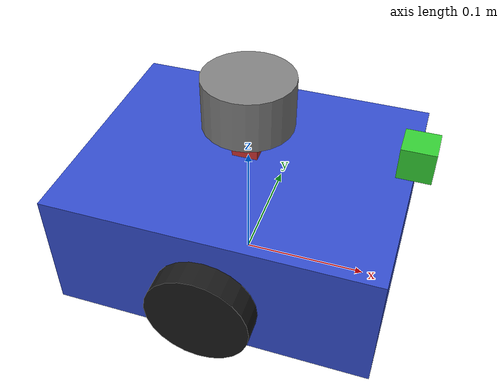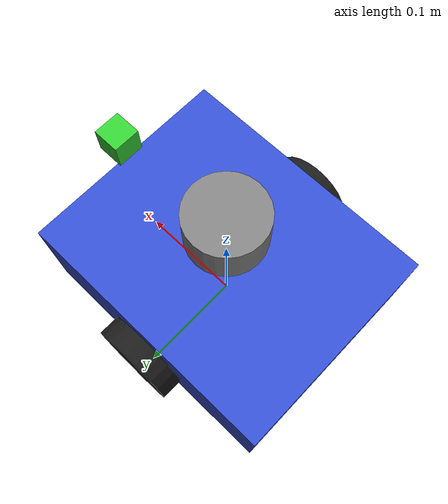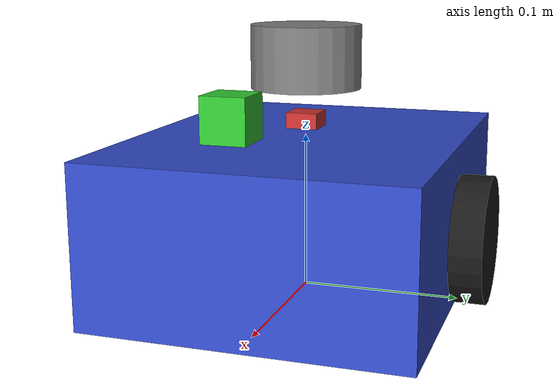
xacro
<?xml version="1.0"?>
<robot name="slam_robot" xmlns:xacro="http://www.ros.org/wiki/xacro">

  <!-- Define properties -->
  <xacro:property name="base_width" value="0.20"/>
  <xacro:property name="base_length" value="0.25"/>
  <xacro:property name="base_height" value="0.10"/>
  <xacro:property name="wheel_radius" value="0.04"/>
  <xacro:property name="wheel_width" value="0.02"/>
  <xacro:property name="wheel_separation" value="0.22"/>

  <!-- Define materials for RViz -->
  <material name="blue">
    <color rgba="0.2 0.3 0.8 1.0"/>
  </material>

  <material name="red">
    <color rgba="0.8 0.2 0.2 1.0"/>
  </material>

  <material name="green">
    <color rgba="0.2 0.8 0.2 1.0"/>
  </material>

  <material name="gray">
    <color rgba="0.5 0.5 0.5 1.0"/>
  </material>

  <material name="black">
    <color rgba="0.1 0.1 0.1 1.0"/>
  </material>

  <!-- Base link (robot main body) -->
  <link name="base_link">
    <visual>
      <geometry>
        <box size="${base_length} ${base_width} ${base_height}"/>
      </geometry>
      <origin xyz="0 0 ${base_height/2}" rpy="0 0 0"/>
      <material name="blue"/>
    </visual>
    <collision>
      <geometry>
        <box size="${base_length} ${base_width} ${base_height}"/>
      </geometry>
      <origin xyz="0 0 ${base_height/2}" rpy="0 0 0"/>
    </collision>
    <inertial>
      <mass value="2.0"/>
      <origin xyz="0 0 ${base_height/2}" rpy="0 0 0"/>
      <inertia ixx="0.0167" ixy="0.0" ixz="0.0" iyy="0.0208" iyz="0.0" izz="0.0292"/>
    </inertial>
  </link>

  <!-- Gazebo material for base_link -->
  <gazebo reference="base_link">
    <material>Gazebo/Blue</material>
  </gazebo>

  <!-- IMU link -->
  <link name="imu_link">
    <visual>
      <geometry>
        <box size="0.02 0.02 0.01"/>
      </geometry>
      <material name="red"/>
    </visual>
    <inertial>
      <mass value="0.01"/>
      <inertia ixx="0.00001" ixy="0.0" ixz="0.0" iyy="0.00001" iyz="0.0" izz="0.00001"/>
    </inertial>
  </link>

  <joint name="base_to_imu" type="fixed">
    <parent link="base_link"/>
    <child link="imu_link"/>
    <origin xyz="0.0 0.0 0.11" rpy="0 0 0"/>
  </joint>

<gazebo reference="imu_link">
    <material>Gazebo/Red</material>
  </gazebo>

  <!-- IMU Sensor Plugin - ADD THIS -->
  <gazebo reference="imu_link">
    <sensor name="imu_sensor" type="imu">
      <always_on>true</always_on>
      <update_rate>100</update_rate>
      <imu>
        <angular_velocity>
          <x>
            <noise type="gaussian">
              <mean>0.0</mean>
              <stddev>0.01</stddev>
            </noise>
          </x>
          <y>
            <noise type="gaussian">
              <mean>0.0</mean>
              <stddev>0.01</stddev>
            </noise>
          </y>
          <z>
            <noise type="gaussian">
              <mean>0.0</mean>
              <stddev>0.01</stddev>
            </noise>
          </z>
        </angular_velocity>
        <linear_acceleration>
          <x>
            <noise type="gaussian">
              <mean>0.0</mean>
              <stddev>0.05</stddev>
            </noise>
          </x>
          <y>
            <noise type="gaussian">
              <mean>0.0</mean>
              <stddev>0.05</stddev>
            </noise>
          </y>
          <z>
            <noise type="gaussian">
              <mean>0.0</mean>
              <stddev>0.05</stddev>
            </noise>
          </z>
        </linear_acceleration>
      </imu>
    </sensor>
  </gazebo>

  <!-- Camera link -->
  <link name="camera_link">
    <visual>
      <geometry>
        <box size="0.025 0.025 0.025"/>
      </geometry>
      <material name="green"/>
    </visual>
    <inertial>
      <mass value="0.01"/>
      <inertia ixx="0.00001" ixy="0.0" ixz="0.0" iyy="0.00001" iyz="0.0" izz="0.00001"/>
    </inertial>
  </link>

  <joint name="base_to_camera" type="fixed">
    <parent link="base_link"/>
    <child link="camera_link"/>
    <origin xyz="0.125 0.0 0.13" rpy="0 0 0"/>
  </joint>

  <gazebo reference="camera_link">
    <material>Gazebo/Green</material>
  </gazebo>

  <!-- Camera Sensor -->
  <gazebo reference="camera_link">
    <sensor name="camera_sensor" type="camera">
      <update_rate>30</update_rate>
      <always_on>1</always_on>
      <visualize>true</visualize>
      <camera>
        <horizontal_fov>1.085</horizontal_fov>
        <image>
          <width>640</width>
          <height>480</height>
          <format>R8G8B8</format>
        </image>
        <clip>
          <near>0.1</near>
          <far>100</far>
        </clip>
        <noise>
          <type>gaussian</type>
          <mean>0.0</mean>
          <stddev>0.007</stddev>
        </noise>
      </camera>
    </sensor>
  </gazebo>

  <!-- LiDAR link -->
  <link name="laser_link">
    <visual>
      <geometry>
        <cylinder radius="0.035" length="0.04"/>
      </geometry>
      <material name="gray"/>
    </visual>
    <collision>
      <geometry>
        <cylinder radius="0.035" length="0.04"/>
      </geometry>
    </collision>
    <inertial>
      <mass value="0.2"/>
      <inertia ixx="0.0001" ixy="0.0" ixz="0.0" iyy="0.0001" iyz="0.0" izz="0.0001"/>
    </inertial>
  </link>

  <joint name="base_to_laser" type="fixed">
    <parent link="base_link"/>
    <child link="laser_link"/>
    <origin xyz="0.0 0.0 0.15" rpy="0 0 0"/>
  </joint>

  <gazebo reference="laser_link">
    <material>Gazebo/Gray</material>
  </gazebo>

  <!-- LiDAR Sensor -->
  <gazebo reference="laser_link">
    <sensor name="lidar_sensor" type="ray">
      <always_on>true</always_on>
      <update_rate>10</update_rate>
      <visualize>true</visualize>
      <ray>
        <scan>
          <horizontal>
            <samples>360</samples>
            <resolution>1</resolution>
            <min_angle>-3.14159</min_angle>
            <max_angle>3.14159</max_angle>
          </horizontal>
        </scan>
        <range>
          <min>0.1</min>
          <max>10.0</max>
          <resolution>0.01</resolution>
        </range>
        <noise>
          <type>gaussian</type>
          <mean>0.0</mean>
          <stddev>0.01</stddev>
        </noise>
      </ray>
    </sensor>
  </gazebo>

  <!-- Left wheel -->
  <link name="left_wheel">
    <visual>
      <geometry>
        <cylinder radius="${wheel_radius}" length="${wheel_width}"/>
      </geometry>
      <origin xyz="0 0 0" rpy="1.5708 0 0"/>
      <material name="black"/>
    </visual>
    <collision>
      <geometry>
        <cylinder radius="${wheel_radius}" length="${wheel_width}"/>
      </geometry>
      <origin xyz="0 0 0" rpy="1.5708 0 0"/>
    </collision>
    <inertial>
      <mass value="0.1"/>
      <origin xyz="0 0 0" rpy="1.5708 0 0"/>
      <inertia ixx="0.0001" ixy="0.0" ixz="0.0" iyy="0.0001" iyz="0.0" izz="0.0001"/>
    </inertial>
  </link>

  <joint name="base_to_left_wheel" type="continuous">
    <parent link="base_link"/>
    <child link="left_wheel"/>
    <origin xyz="0.0 ${wheel_separation/2} ${wheel_radius}" rpy="0 0 0"/>
    <axis xyz="0 1 0"/>
  </joint>

  <gazebo reference="left_wheel">
    <material>Gazebo/Black</material>
  </gazebo>

  <!-- Right wheel -->
  <link name="right_wheel">
    <visual>
      <geometry>
        <cylinder radius="${wheel_radius}" length="${wheel_width}"/>
      </geometry>
      <origin xyz="0 0 0" rpy="1.5708 0 0"/>
      <material name="black"/>
    </visual>
    <collision>
      <geometry>
        <cylinder radius="${wheel_radius}" length="${wheel_width}"/>
      </geometry>
      <origin xyz="0 0 0" rpy="1.5708 0 0"/>
    </collision>
    <inertial>
      <mass value="0.1"/>
      <origin xyz="0 0 0" rpy="1.5708 0 0"/>
      <inertia ixx="0.0001" ixy="0.0" ixz="0.0" iyy="0.0001" iyz="0.0" izz="0.0001"/>
    </inertial>
  </link>

  <joint name="base_to_right_wheel" type="continuous">
    <parent link="base_link"/>
    <child link="right_wheel"/>
    <origin xyz="0.0 ${-wheel_separation/2} ${wheel_radius}" rpy="0 0 0"/>
    <axis xyz="0 1 0"/>
  </joint>

  <gazebo reference="right_wheel">
    <material>Gazebo/Black</material>
  </gazebo>

  <!-- Caster wheel (front) for stability -->
  <link name="caster_wheel">
    <visual>
      <geometry>
        <sphere radius="0.02"/>
      </geometry>
      <material name="black"/>
    </visual>
    <collision>
      <geometry>
        <sphere radius="0.02"/>
      </geometry>
    </collision>
    <inertial>
      <mass value="0.05"/>
      <inertia ixx="0.00001" ixy="0.0" ixz="0.0" iyy="0.00001" iyz="0.0" izz="0.00001"/>
    </inertial>
  </link>

  <joint name="base_to_caster" type="fixed">
    <parent link="base_link"/>
    <child link="caster_wheel"/>
    <origin xyz="0.10 0.0 0.02" rpy="0 0 0"/>
  </joint>

  <gazebo reference="caster_wheel">
    <material>Gazebo/Black</material>
    <mu1>0.0</mu1>  <!-- Frictionless caster -->
    <mu2>0.0</mu2>
  </gazebo>

  <!-- Differential Drive Plugin -->
  <gazebo>
    <plugin filename="libgz-sim-diff-drive-system.so" name="gz::sim::systems::DiffDrive">
      <left_joint>base_to_left_wheel</left_joint>
      <right_joint>base_to_right_wheel</right_joint>
      <wheel_separation>${wheel_separation}</wheel_separation>
      <wheel_radius>${wheel_radius}</wheel_radius>
      <odom_publish_frequency>50</odom_publish_frequency>
    </plugin>
  </gazebo>

</robot>
